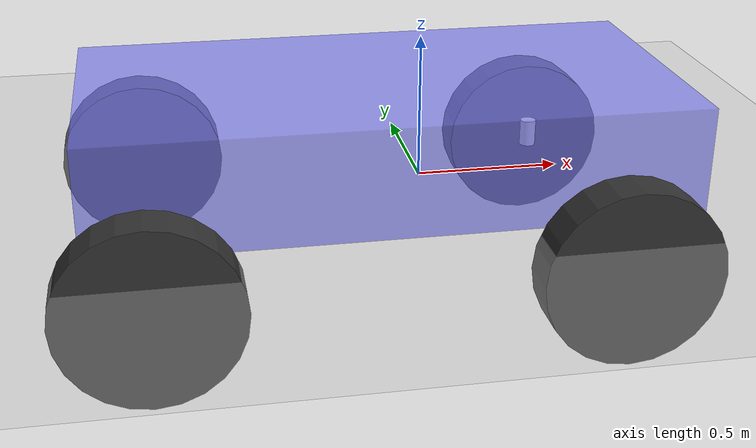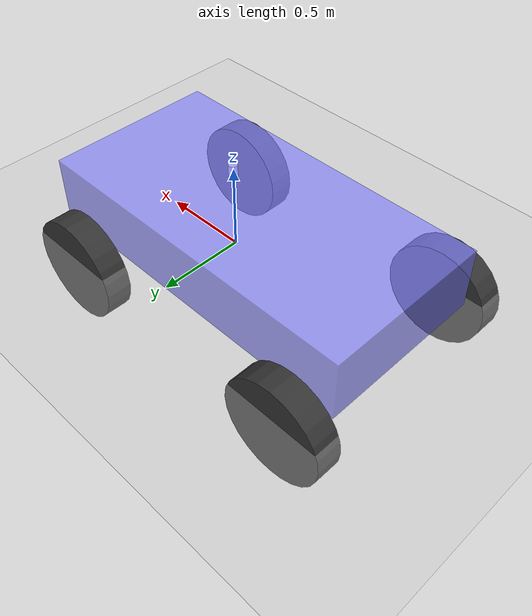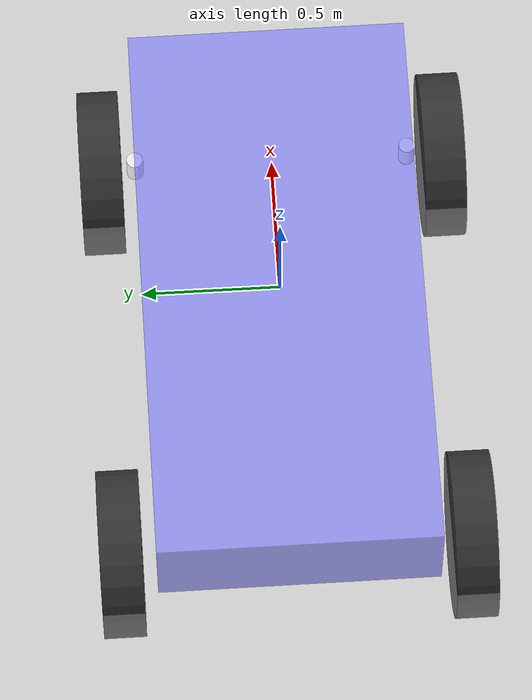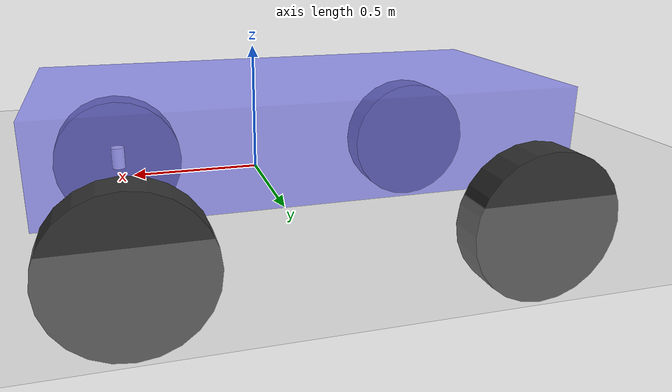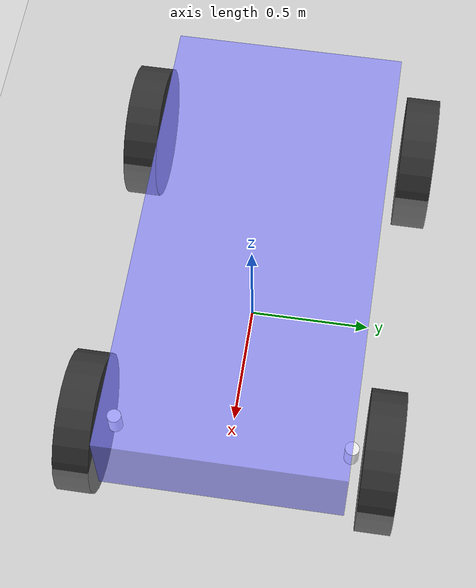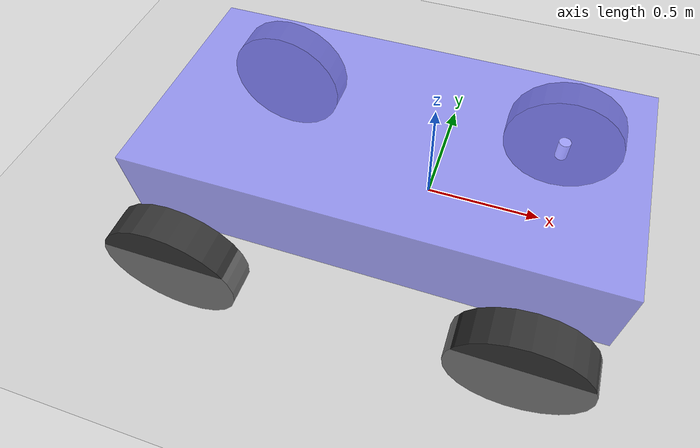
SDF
<?xml version="1.0"?>
<sdf version="1.8">
  <world name="my_world">
    <plugin
      filename="gz-sim-physics-system"
      name="gz::sim::systems::Physics">
    </plugin>
    <plugin
      filename="gz-sim-sensors-system"
      name="gz::sim::systems::Sensors">
      <render_engine>ogre2</render_engine>
    </plugin>
    <plugin
      filename="gz-sim-scene-broadcaster-system"
      name="gz::sim::systems::SceneBroadcaster">
    </plugin>
    <plugin
      filename="gz-sim-user-commands-system"
      name="gz::sim::systems::UserCommands">
    </plugin>

    <plugin filename="gz-sim-imu-system"
        name="gz::sim::systems::Imu">
    </plugin>

    <light name="sun1" type="directional">
      <cast_shadows>true</cast_shadows>
      <pose>0 0 10 0 0 0</pose>
      <diffuse>0.8 0.8 0.8 1</diffuse>
      <specular>0.2 0.2 0.2 1</specular>
      <attenuation>
        <range>1000</range>
        <constant>0.9</constant>
        <linear>0.01</linear>
        <quadratic>0.001</quadratic>
      </attenuation>
      <direction>-0.5 0.1 -0.9</direction>
    </light>

    <model name="ground_plane">
      <static>true</static>
      <link name="link">
        <collision name="collision">
          <geometry>
            <plane>
              <normal>0 0 1</normal>
              <size>100 100</size>
            </plane>
          </geometry>
        </collision>
        <visual name="visual">
          <geometry>
            <plane>
              <normal>0 0 1</normal>
              <size>100 100</size>
            </plane>
          </geometry>
          <material>
            <ambient>0.8 0.8 0.8 1</ambient>
            <diffuse>0.8 0.8 0.8 1</diffuse>
            <specular>0.8 0.8 0.8 1</specular>
          </material>
        </visual>
      </link>
    </model>

    <include>
      <name>warehouse</name>
      <pose>0 0 -0.09 0 0 0</pose>
      <uri>model://ackermann-vehicle-description/worlds/warehouse/model.sdf</uri>
    </include>

  </world>
</sdf>

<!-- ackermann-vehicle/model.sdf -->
<sdf version="1.8">

  <model name='ackermann-vehicle'>
    <self_collide>false</self_collide>
    <static>false</static>

    <link name='base_link'>
      <gz_frame_id>ackermann-vehicle/base_link</gz_frame_id>
      <pose>-0.151427 -0 0.175 0 -0 0</pose>
      <inertial>
        <mass>1.14395</mass>
        <inertia>
          <ixx>0.126164</ixx>
          <ixy>0</ixy>
          <ixz>0</ixz>
          <iyy>0.416519</iyy>
          <iyz>0</iyz>
          <izz>0.481014</izz>
        </inertia>
      </inertial>
      <visual name='visual'>
        <geometry>
          <box>
            <size>2.01142 1 0.568726</size>
          </box>
        </geometry>
        <material>
          <ambient>0.5 0.5 1.0 0.7</ambient>
          <diffuse>0.5 0.5 1.0 0.7</diffuse>
          <specular>0.0 0.0 1.0 1</specular>
        </material>
      </visual>
      <collision name='collision'>
        <geometry>
          <box>
            <size>2.01142 1 0.568726</size>
          </box>
        </geometry>
      </collision>
    </link>

    <link name='front_left_wheel_link'>
      <pose>0.554283 0.625029 -0.025 -1.5707 0 0</pose>
      <inertial>
        <mass>2</mass>
        <inertia>
          <ixx>0.145833</ixx>
          <ixy>0</ixy>
          <ixz>0</ixz>
          <iyy>0.145833</iyy>
          <iyz>0</iyz>
          <izz>0.125</izz>
        </inertia>
      </inertial>
      <visual name='ackermann-vehicle/FrontLeftWheelVisual'>
        <geometry>
          <cylinder>
            <length>0.15</length>
            <radius>0.3</radius>
          </cylinder>
        </geometry>
        <material>
          <ambient>0.2 0.2 0.2 1</ambient>
          <diffuse>0.2 0.2 0.2 1</diffuse>
          <specular>0.2 0.2 0.2 1</specular>
        </material>
      </visual>
      <collision name='ackermann-vehicle/FrontLeftWheelCollision'>
        <geometry>
          <cylinder>
            <length>0.15</length>
            <radius>0.3</radius>
          </cylinder>
        </geometry>
        <surface>
          <friction>
            <ode>
              <mu>0.5</mu>
              <mu2>1.0</mu2>
              <fdir1>0 0 1</fdir1>
            </ode>
            <bullet>
              <friction>0.5</friction>
              <friction2>1</friction2>
              <rolling_friction>0.1</rolling_friction>
            </bullet>
          </friction>
        </surface>
      </collision>
    </link>

    <link name="front_left_wheel_steering_link">
      <pose>0.554283 0.5 0.02 0 0 0</pose>
      <inertial>
        <mass>0.5</mass>
        <inertia>
          <ixx>0.0153</ixx>
          <iyy>0.025</iyy>
          <izz>0.0153</izz>
        </inertia>
      </inertial>
      <visual name="steering_link_visual">
        <pose>0 0 0 0 0 0</pose>
        <geometry>
          <cylinder>
            <length>0.1</length>
            <radius>0.03</radius>
          </cylinder>
        </geometry>
        <material>
          <ambient>1 1 1</ambient>
          <diffuse>1 1 1</diffuse>
        </material>
      </visual>
    </link>

    <joint name='front_left_wheel_joint' type='revolute'>
      <parent>front_left_wheel_steering_link</parent>
      <child>front_left_wheel_link</child>
      <axis>
        <xyz>0 0 1</xyz>
        <limit>
          <lower>-1.79769e+308</lower>
          <upper>1.79769e+308</upper>
        </limit>
        <use_parent_model_frame>1</use_parent_model_frame>
      </axis>
    </joint>

    <joint name="front_left_wheel_steering_joint" type="revolute">
      <parent>base_link</parent>
      <child>front_left_wheel_steering_link</child>
      <axis>
        <xyz>0 0 1</xyz>
        <limit>
          <lower>-0.6</lower>
          <upper>+0.6</upper>
          <velocity>1.0</velocity>
          <effort>25</effort>
        </limit>
        <use_parent_model_frame>1</use_parent_model_frame>
      </axis>
    </joint>

    <link name='front_right_wheel_link'>
      <pose>0.554283 -0.625029 -0.025 -1.5707 0 0</pose>
      <inertial>
        <mass>2</mass>
        <inertia>
          <ixx>0.145833</ixx>
          <ixy>0</ixy>
          <ixz>0</ixz>
          <iyy>0.145833</iyy>
          <iyz>0</iyz>
          <izz>0.125</izz>
        </inertia>
      </inertial>
      <visual name='ackermann-vehicle/FrontRightWheelVisual'>
        <geometry>
          <cylinder>
            <length>0.15</length>
            <radius>0.3</radius>
          </cylinder>
        </geometry>
        <material>
          <ambient>0.2 0.2 0.2 1</ambient>
          <diffuse>0.2 0.2 0.2 1</diffuse>
          <specular>0.2 0.2 0.2 1</specular>
        </material>
      </visual>
      <collision name='ackermann-vehicle/FrontRightWheelCollision'>
        <geometry>
          <cylinder>
            <length>0.15</length>
            <radius>0.3</radius>
          </cylinder>
        </geometry>
        <surface>
          <friction>
            <ode>
              <mu>0.5</mu>
              <mu2>1.0</mu2>
              <fdir1>0 0 1</fdir1>
            </ode>
            <bullet>
              <friction>0.5</friction>
              <friction2>1</friction2>
              <rolling_friction>0.1</rolling_friction>
            </bullet>
          </friction>
        </surface>
      </collision>
    </link>

    <link name="front_right_wheel_steering_link">
      <pose>0.554283 -0.5 0.02 0 0 0</pose>
      <inertial>
        <mass>0.5</mass>
        <inertia>
          <ixx>0.0153</ixx>
          <iyy>0.025</iyy>
          <izz>0.0153</izz>
        </inertia>
      </inertial>
      <visual name="steering_link_visual">
        <pose>0 0 0 0 0 0</pose>
        <geometry>
          <cylinder>
            <length>0.1</length>
            <radius>0.03</radius>
          </cylinder>
        </geometry>
        <material>
          <ambient>1 1 1</ambient>
          <diffuse>1 1 1</diffuse>
        </material>
      </visual>
    </link>

    <joint name='front_right_wheel_joint' type='revolute'>
      <parent>front_right_wheel_steering_link</parent>
      <child>front_right_wheel_link</child>
      <axis>
        <xyz>0 0 1</xyz>
        <limit>
          <lower>-1.79769e+308</lower>
          <upper>1.79769e+308</upper>
        </limit>
        <use_parent_model_frame>1</use_parent_model_frame>
      </axis>
    </joint>

    <joint name="front_right_wheel_steering_joint" type="revolute">
      <parent>base_link</parent>
      <child>front_right_wheel_steering_link</child>
      <axis>
        <xyz>0 0 1</xyz>
        <limit>
          <lower>-0.6</lower>
          <upper>+0.6</upper>
          <velocity>1.0</velocity>
          <effort>25</effort>
        </limit>
        <use_parent_model_frame>1</use_parent_model_frame>
      </axis>
    </joint>

    <joint name='rear_right_wheel_joint' type='revolute'>
      <parent>base_link</parent>
      <child>rear_right_wheel_link</child>
      <axis>
        <xyz>0 0 1</xyz>
        <limit>
          <lower>-1.79769e+308</lower>
          <upper>1.79769e+308</upper>
        </limit>
        <use_parent_model_frame>1</use_parent_model_frame>
      </axis>
    </joint>

    <joint name='rear_left_wheel_joint' type='revolute'>
      <parent>base_link</parent>
      <child>rear_left_wheel_link</child>
      <axis>
        <xyz>0 0 1</xyz>
        <limit>
          <lower>-1.79769e+308</lower>
          <upper>1.79769e+308</upper>
        </limit>
        <use_parent_model_frame>1</use_parent_model_frame>
      </axis>
    </joint>

    <link name='rear_right_wheel_link'>
      <pose>-0.957138 -0.625029 -0.025 -1.5707 0 0</pose>
      <inertial>
        <mass>2</mass>
        <inertia>
          <ixx>0.145833</ixx>
          <ixy>0</ixy>
          <ixz>0</ixz>
          <iyy>0.145833</iyy>
          <iyz>0</iyz>
          <izz>0.125</izz>
        </inertia>
      </inertial>
      <visual name='RearRightWheelVisual'>
        <geometry>
          <cylinder>
            <length>0.15</length>
            <radius>0.3</radius>
          </cylinder>
        </geometry>
        <material>
          <ambient>0.2 0.2 0.2 1</ambient>
          <diffuse>0.2 0.2 0.2 1</diffuse>
          <specular>0.2 0.2 0.2 1</specular>
        </material>
      </visual>
      <collision name='RearRightWheelCollision'>
        <geometry>
          <cylinder>
            <length>0.15</length>
            <radius>0.3</radius>
          </cylinder>
        </geometry>
        <surface>
          <friction>
            <ode>
              <mu>0.5</mu>
              <mu2>1.0</mu2>
              <fdir1>0 0 1</fdir1>
            </ode>
            <bullet>
              <friction>0.5</friction>
              <friction2>1</friction2>
              <rolling_friction>0.5</rolling_friction>
            </bullet>
          </friction>
        </surface>
      </collision>
    </link>

    <link name='rear_left_wheel_link'>
      <pose>-0.957138 0.625029 -0.025 -1.5707 0 0</pose>
      <inertial>
        <mass>2</mass>
        <inertia>
          <ixx>0.145833</ixx>
          <ixy>0</ixy>
          <ixz>0</ixz>
          <iyy>0.145833</iyy>
          <iyz>0</iyz>
          <izz>0.125</izz>
        </inertia>
      </inertial>
      <visual name='RearLeftWheelVisual'>
        <geometry>
          <cylinder>
            <length>0.15</length>
            <radius>0.3</radius>
          </cylinder>
        </geometry>
        <material>
          <ambient>0.2 0.2 0.2 1</ambient>
          <diffuse>0.2 0.2 0.2 1</diffuse>
          <specular>0.2 0.2 0.2 1</specular>
        </material>
      </visual>
      <collision name='RearLeftWheelCollision'>
        <geometry>
          <cylinder>
            <length>0.15</length>
            <radius>0.3</radius>
          </cylinder>
        </geometry>
        <surface>
          <friction>
            <ode>
              <mu>0.5</mu>
              <mu2>1.0</mu2>
              <fdir1>0 0 1</fdir1>
            </ode>
            <bullet>
              <friction>0.5</friction>
              <friction2>1</friction2>
              <rolling_friction>0.5</rolling_friction>
            </bullet>
          </friction>
        </surface>
      </collision>
    </link>

    <plugin
      filename="gz-sim-ackermann-steering-system"
      name="gz::sim::systems::AckermannSteering">
      <left_joint>front_left_wheel_joint</left_joint>
      <left_joint>rear_left_wheel_joint</left_joint>
      <right_joint>front_right_wheel_joint</right_joint>
      <right_joint>rear_right_wheel_joint</right_joint>
      <left_steering_joint>front_left_wheel_steering_joint</left_steering_joint>
      <right_steering_joint>front_right_wheel_steering_joint</right_steering_joint>
      <kingpin_width>1.0</kingpin_width>
      <steering_limit>0.5</steering_limit>
      <wheel_base>1.0</wheel_base>
      <wheel_separation>1.25</wheel_separation>
      <wheel_radius>0.3</wheel_radius>
      <min_velocity>-1</min_velocity>
      <max_velocity>1</max_velocity>
      <min_acceleration>-3</min_acceleration>
      <max_acceleration>3</max_acceleration>
      <topic>/cmd_vel</topic>
    </plugin>

    <plugin
      filename="gz-sim-pose-publisher-system"
      name="gz::sim::systems::PosePublisher">
      <publish_link_pose>true</publish_link_pose>
      <publish_sensor_pose>true</publish_sensor_pose>
      <publish_model_pose>false</publish_model_pose>
      <use_pose_vector_msg>true</use_pose_vector_msg>
    </plugin>

    <plugin
      filename="gz-sim-odometry-publisher-system"
      name="gz::sim::systems::OdometryPublisher">
      <odom_frame>odom</odom_frame>
      <robot_base_frame>ackermann-vehicle</robot_base_frame>
      <odom_topic>odom</odom_topic>
      <dimensions>3</dimensions>
    </plugin>

    <plugin
      filename="gz-sim-joint-state-publisher-system"
      name="gz::sim::systems::JointStatePublisher">
    </plugin>

  </model>

</sdf>
